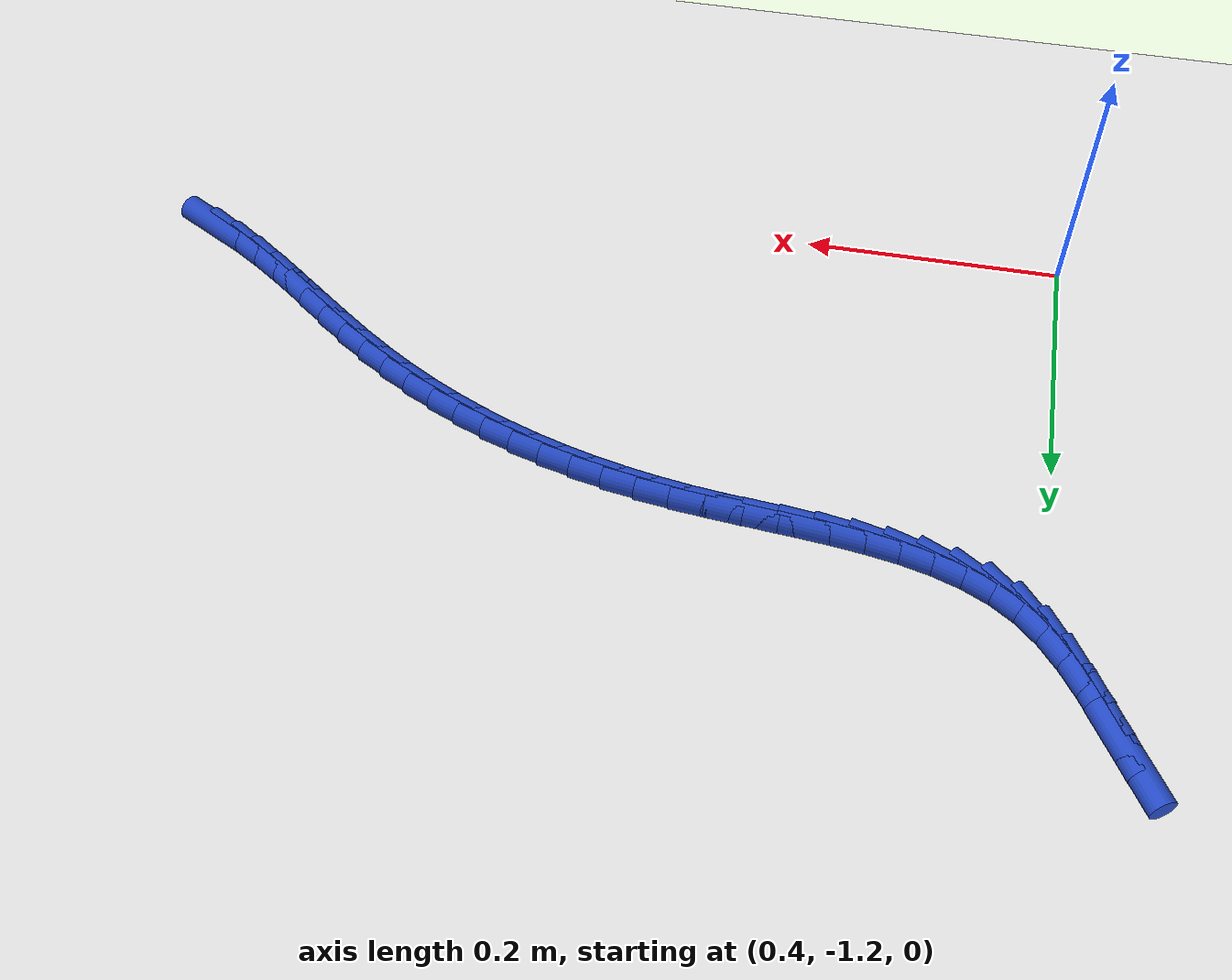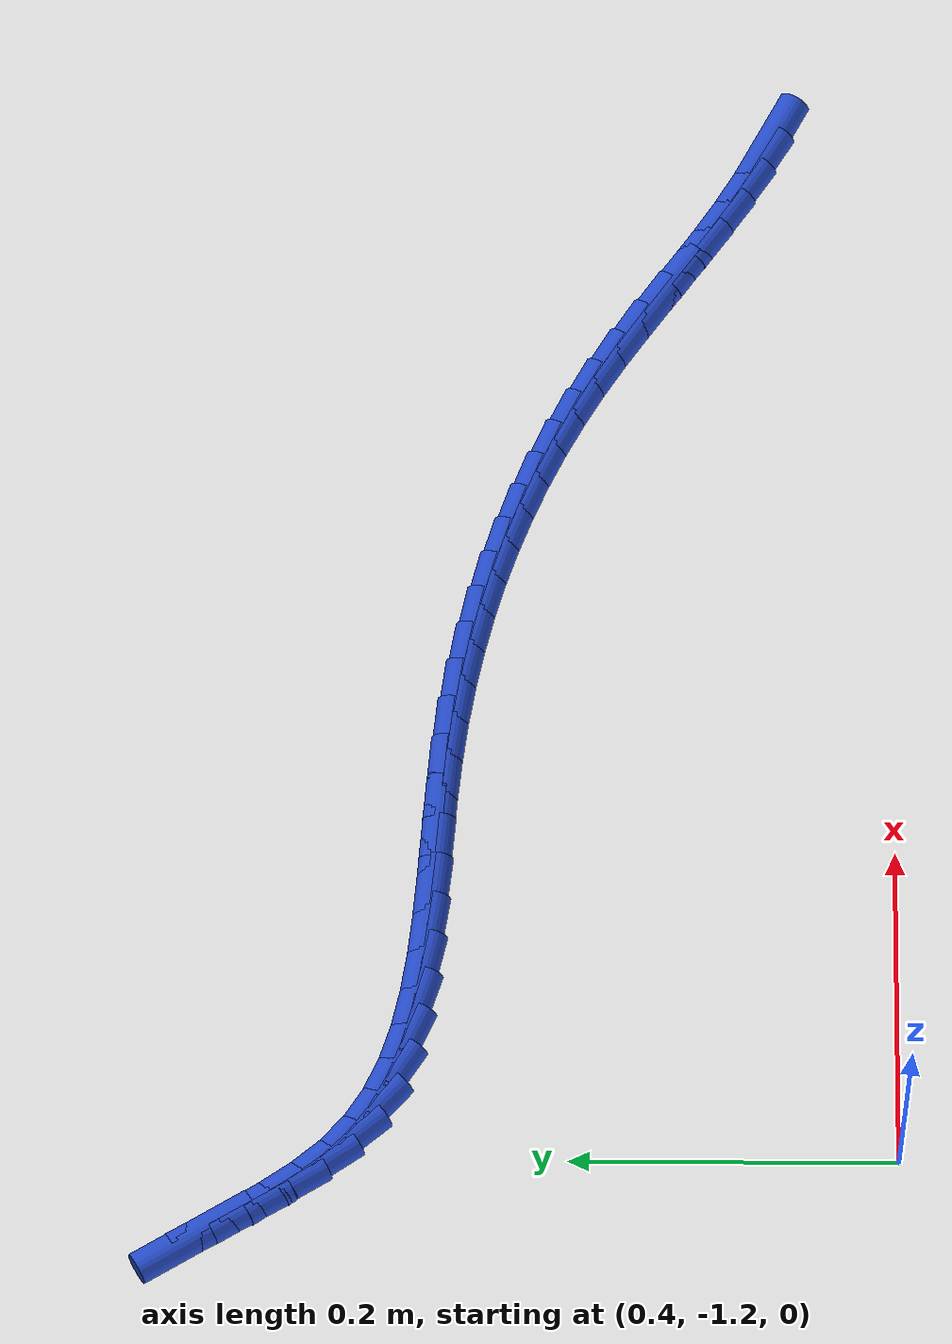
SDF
<sdf version="1.6">
 <world name="default">
  <model name="ground_plane">
   <static>1</static>
   <link name="link">
    <collision name="collision">
     <geometry><plane><normal>0 0 1</normal><size>100 100</size></plane></geometry>
     <surface><friction><ode><mu>100</mu><mu2>50</mu2></ode></friction></surface>
    </collision>
    <visual name="visual">
     <cast_shadows>0</cast_shadows>
     <geometry><plane><normal>0 0 1</normal><size>100 100</size></plane></geometry>
     <material>
      <script><uri>file://media/materials/scripts/gazebo.material</uri><name>Gazebo/WhiteGlow</name></script>
     </material>
    </visual>
   </link>
  </model>
  <model name="line">
   <link name="link_210">
    <pose>1.0692392543426281 -1.1220986752547326 0.01 0 1.57 -0.49415860476495577</pose>
    <collision name="collision">
     <geometry><cylinder><radius>0.01</radius><length>0.08</length></cylinder></geometry>
    </collision>
    <visual name="visual">
     <material>
      <script><name>Gazebo/Blue</name><uri>file://media/materials/scripts/gazebo.material</uri></script>
     </material>
     <geometry><cylinder><radius>0.01</radius><length>0.08</length></cylinder></geometry>
    </visual>
   </link>
   <link name="link_211">
    <pose>1.0484195898403872 -1.1108822518787465 0.01 0 1.57 -0.5541489551107136</pose>
    <collision name="collision">
     <geometry><cylinder><radius>0.01</radius><length>0.08</length></cylinder></geometry>
    </collision>
    <visual name="visual">
     <material>
      <script><name>Gazebo/Blue</name><uri>file://media/materials/scripts/gazebo.material</uri></script>
     </material>
     <geometry><cylinder><radius>0.01</radius><length>0.08</length></cylinder></geometry>
    </visual>
   </link>
   <link name="link_212">
    <pose>1.0279046003604007 -1.0981869949246754 0.01 0 1.57 -0.5968837927600502</pose>
    <collision name="collision">
     <geometry><cylinder><radius>0.01</radius><length>0.08</length></cylinder></geometry>
    </collision>
    <visual name="visual">
     <material>
      <script><name>Gazebo/Blue</name><uri>file://media/materials/scripts/gazebo.material</uri></script>
     </material>
     <geometry><cylinder><radius>0.01</radius><length>0.08</length></cylinder></geometry>
    </visual>
   </link>
   <link name="link_213">
    <pose>1.007603782115976 -1.084391131349122 0.01 0 1.57 -0.6237192578342458</pose>
    <collision name="collision">
     <geometry><cylinder><radius>0.01</radius><length>0.08</length></cylinder></geometry>
    </collision>
    <visual name="visual">
     <material>
      <script><name>Gazebo/Blue</name><uri>file://media/materials/scripts/gazebo.material</uri></script>
     </material>
     <geometry><cylinder><radius>0.01</radius><length>0.08</length></cylinder></geometry>
    </visual>
   </link>
   <link name="link_214">
    <pose>0.9874266313204213 -1.0698728881086876 0.01 0 1.57 -0.6356524924844298</pose>
    <collision name="collision">
     <geometry><cylinder><radius>0.01</radius><length>0.08</length></cylinder></geometry>
    </collision>
    <visual name="visual">
     <material>
      <script><name>Gazebo/Blue</name><uri>file://media/materials/scripts/gazebo.material</uri></script>
     </material>
     <geometry><cylinder><radius>0.01</radius><length>0.08</length></cylinder></geometry>
    </visual>
   </link>
   <link name="link_215">
    <pose>0.9672826441870447 -1.0550104921599754 0.01 0 1.57 -0.6331998358000652</pose>
    <collision name="collision">
     <geometry><cylinder><radius>0.01</radius><length>0.08</length></cylinder></geometry>
    </collision>
    <visual name="visual">
     <material>
      <script><name>Gazebo/Blue</name><uri>file://media/materials/scripts/gazebo.material</uri></script>
     </material>
     <geometry><cylinder><radius>0.01</radius><length>0.08</length></cylinder></geometry>
    </visual>
   </link>
   <link name="link_216">
    <pose>0.9470813169291535 -1.0401821704595868 0.01 0 1.57 -0.6163631748405805</pose>
    <collision name="collision">
     <geometry><cylinder><radius>0.01</radius><length>0.08</length></cylinder></geometry>
    </collision>
    <visual name="visual">
     <material>
      <script><name>Gazebo/Blue</name><uri>file://media/materials/scripts/gazebo.material</uri></script>
     </material>
     <geometry><cylinder><radius>0.01</radius><length>0.08</length></cylinder></geometry>
    </visual>
   </link>
   <link name="link_217">
    <pose>0.9267321457600551 -1.025766149964123 0.01 0 1.57 -0.5848445783812425</pose>
    <collision name="collision">
     <geometry><cylinder><radius>0.01</radius><length>0.08</length></cylinder></geometry>
    </collision>
    <visual name="visual">
     <material>
      <script><name>Gazebo/Blue</name><uri>file://media/materials/scripts/gazebo.material</uri></script>
     </material>
     <geometry><cylinder><radius>0.01</radius><length>0.08</length></cylinder></geometry>
    </visual>
   </link>
   <link name="link_218">
    <pose>0.9061455462487938 -1.0121354609734021 0.01 0 1.57 -0.5444170724606746</pose>
    <collision name="collision">
     <geometry><cylinder><radius>0.01</radius><length>0.08</length></cylinder></geometry>
    </collision>
    <visual name="visual">
     <material>
      <script><name>Gazebo/Blue</name><uri>file://media/materials/scripts/gazebo.material</uri></script>
     </material>
     <geometry><cylinder><radius>0.01</radius><length>0.08</length></cylinder></geometry>
    </visual>
   </link>
   <link name="link_219">
    <pose>0.885262265817363 -0.9994916830381732 0.01 0 1.57 -0.5028542162297456</pose>
    <collision name="collision">
     <geometry><cylinder><radius>0.01</radius><length>0.08</length></cylinder></geometry>
    </collision>
    <visual name="visual">
     <material>
      <script><name>Gazebo/Blue</name><uri>file://media/materials/scripts/gazebo.material</uri></script>
     </material>
     <geometry><cylinder><radius>0.01</radius><length>0.08</length></cylinder></geometry>
    </visual>
   </link>
   <link name="link_220">
    <pose>0.8640595830158334 -0.9878299035676349 0.01 0 1.57 -0.46088304631706806</pose>
    <collision name="collision">
     <geometry><cylinder><radius>0.01</radius><length>0.08</length></cylinder></geometry>
    </collision>
    <visual name="visual">
     <material>
      <script><name>Gazebo/Blue</name><uri>file://media/materials/scripts/gazebo.material</uri></script>
     </material>
     <geometry><cylinder><radius>0.01</radius><length>0.08</length></cylinder></geometry>
    </visual>
   </link>
   <link name="link_221">
    <pose>0.8425169490619654 -0.9771329289704342 0.01 0 1.57 -0.41878222858295233</pose>
    <collision name="collision">
     <geometry><cylinder><radius>0.01</radius><length>0.08</length></cylinder></geometry>
    </collision>
    <visual name="visual">
     <material>
      <script><name>Gazebo/Blue</name><uri>file://media/materials/scripts/gazebo.material</uri></script>
     </material>
     <geometry><cylinder><radius>0.01</radius><length>0.08</length></cylinder></geometry>
    </visual>
   </link>
   <link name="link_222">
    <pose>0.820613815173519 -0.9673835656552178 0.01 0 1.57 -0.3768364611860634</pose>
    <collision name="collision">
     <geometry><cylinder><radius>0.01</radius><length>0.08</length></cylinder></geometry>
    </collision>
    <visual name="visual">
     <material>
      <script><name>Gazebo/Blue</name><uri>file://media/materials/scripts/gazebo.material</uri></script>
     </material>
     <geometry><cylinder><radius>0.01</radius><length>0.08</length></cylinder></geometry>
    </visual>
   </link>
   <link name="link_223">
    <pose>0.7983296325682547 -0.9585646200306324 0.01 0 1.57 -0.33532716750412817</pose>
    <collision name="collision">
     <geometry><cylinder><radius>0.01</radius><length>0.08</length></cylinder></geometry>
    </collision>
    <visual name="visual">
     <material>
      <script><name>Gazebo/Blue</name><uri>file://media/materials/scripts/gazebo.material</uri></script>
     </material>
     <geometry><cylinder><radius>0.01</radius><length>0.08</length></cylinder></geometry>
    </visual>
   </link>
   <link name="link_224">
    <pose>0.7756438524639331 -0.9506588985053253 0.01 0 1.57 -0.2945234467070184</pose>
    <collision name="collision">
     <geometry><cylinder><radius>0.01</radius><length>0.08</length></cylinder></geometry>
    </collision>
    <visual name="visual">
     <material>
      <script><name>Gazebo/Blue</name><uri>file://media/materials/scripts/gazebo.material</uri></script>
     </material>
     <geometry><cylinder><radius>0.01</radius><length>0.08</length></cylinder></geometry>
    </visual>
   </link>
   <link name="link_225">
    <pose>0.7525359260783141 -0.9436492074879427 0.01 0 1.57 -0.25467398946796493</pose>
    <collision name="collision">
     <geometry><cylinder><radius>0.01</radius><length>0.08</length></cylinder></geometry>
    </collision>
    <visual name="visual">
     <material>
      <script><name>Gazebo/Blue</name><uri>file://media/materials/scripts/gazebo.material</uri></script>
     </material>
     <geometry><cylinder><radius>0.01</radius><length>0.08</length></cylinder></geometry>
    </visual>
   </link>
   <link name="link_226">
    <pose>0.7289853046291574 -0.9375183533871315 0.01 0 1.57 -0.21600052793311678</pose>
    <collision name="collision">
     <geometry><cylinder><radius>0.01</radius><length>0.08</length></cylinder></geometry>
    </collision>
    <visual name="visual">
     <material>
      <script><name>Gazebo/Blue</name><uri>file://media/materials/scripts/gazebo.material</uri></script>
     </material>
     <geometry><cylinder><radius>0.01</radius><length>0.08</length></cylinder></geometry>
    </visual>
   </link>
   <link name="link_227">
    <pose>0.7049714393342246 -0.932249142611539 0.01 0 1.57 -0.17869318116623695</pose>
    <collision name="collision">
     <geometry><cylinder><radius>0.01</radius><length>0.08</length></cylinder></geometry>
    </collision>
    <visual name="visual">
     <material>
      <script><name>Gazebo/Blue</name><uri>file://media/materials/scripts/gazebo.material</uri></script>
     </material>
     <geometry><cylinder><radius>0.01</radius><length>0.08</length></cylinder></geometry>
    </visual>
   </link>
   <link name="link_228">
    <pose>0.6804737814112756 -0.9278243815698117 0.01 0 1.57 -0.14290782322537326</pose>
    <collision name="collision">
     <geometry><cylinder><radius>0.01</radius><length>0.08</length></cylinder></geometry>
    </collision>
    <visual name="visual">
     <material>
      <script><name>Gazebo/Blue</name><uri>file://media/materials/scripts/gazebo.material</uri></script>
     </material>
     <geometry><cylinder><radius>0.01</radius><length>0.08</length></cylinder></geometry>
    </visual>
   </link>
   <link name="link_229">
    <pose>0.6554717820780704 -0.9242268766705963 0.01 0 1.57 -0.10978602818370707</pose>
    <collision name="collision">
     <geometry><cylinder><radius>0.01</radius><length>0.08</length></cylinder></geometry>
    </collision>
    <visual name="visual">
     <material>
      <script><name>Gazebo/Blue</name><uri>file://media/materials/scripts/gazebo.material</uri></script>
     </material>
     <geometry><cylinder><radius>0.01</radius><length>0.08</length></cylinder></geometry>
    </visual>
   </link>
   <link name="link_230">
    <pose>0.6299636434909109 -0.9214151337415473 0.01 0 1.57 -0.08859420734961435</pose>
    <collision name="collision">
     <geometry><cylinder><radius>0.01</radius><length>0.08</length></cylinder></geometry>
    </collision>
    <visual name="visual">
     <material>
      <script><name>Gazebo/Blue</name><uri>file://media/materials/scripts/gazebo.material</uri></script>
     </material>
     <geometry><cylinder><radius>0.01</radius><length>0.08</length></cylinder></geometry>
    </visual>
   </link>
   <link name="link_231">
    <pose>0.6041233686365182 -0.9191198266909358 0.01 0 1.57 -0.0836889071680255</pose>
    <collision name="collision">
     <geometry><cylinder><radius>0.01</radius><length>0.08</length></cylinder></geometry>
    </collision>
    <visual name="visual">
     <material>
      <script><name>Gazebo/Blue</name><uri>file://media/materials/scripts/gazebo.material</uri></script>
     </material>
     <geometry><cylinder><radius>0.01</radius><length>0.08</length></cylinder></geometry>
    </visual>
   </link>
   <link name="link_232">
    <pose>0.5782211121678981 -0.9169470201255323 0.01 0 1.57 -0.09489570069887167</pose>
    <collision name="collision">
     <geometry><cylinder><radius>0.01</radius><length>0.08</length></cylinder></geometry>
    </collision>
    <visual name="visual">
     <material>
      <script><name>Gazebo/Blue</name><uri>file://media/materials/scripts/gazebo.material</uri></script>
     </material>
     <geometry><cylinder><radius>0.01</radius><length>0.08</length></cylinder></geometry>
    </visual>
   </link>
   <link name="link_233">
    <pose>0.5525280078095842 -0.9145015098085836 0.01 0 1.57 -0.12286354902997579</pose>
    <collision name="collision">
     <geometry><cylinder><radius>0.01</radius><length>0.08</length></cylinder></geometry>
    </collision>
    <visual name="visual">
     <material>
      <script><name>Gazebo/Blue</name><uri>file://media/materials/scripts/gazebo.material</uri></script>
     </material>
     <geometry><cylinder><radius>0.01</radius><length>0.08</length></cylinder></geometry>
    </visual>
   </link>
   <link name="link_234">
    <pose>0.5273151892861094 -0.9113880915033356 0.01 0 1.57 -0.16910893706075023</pose>
    <collision name="collision">
     <geometry><cylinder><radius>0.01</radius><length>0.08</length></cylinder></geometry>
    </collision>
    <visual name="visual">
     <material>
      <script><name>Gazebo/Blue</name><uri>file://media/materials/scripts/gazebo.material</uri></script>
     </material>
     <geometry><cylinder><radius>0.01</radius><length>0.08</length></cylinder></geometry>
    </visual>
   </link>
   <link name="link_235">
    <pose>0.5028537903220084 -0.907211560973035 0.01 0 1.57 -0.2359291503032187</pose>
    <collision name="collision">
     <geometry><cylinder><radius>0.01</radius><length>0.08</length></cylinder></geometry>
    </collision>
    <visual name="visual">
     <material>
      <script><name>Gazebo/Blue</name><uri>file://media/materials/scripts/gazebo.material</uri></script>
     </material>
     <geometry><cylinder><radius>0.01</radius><length>0.08</length></cylinder></geometry>
    </visual>
   </link>
   <link name="link_236">
    <pose>0.4794149446418139 -0.9015767139809282 0.01 0 1.57 -0.32607855449126716</pose>
    <collision name="collision">
     <geometry><cylinder><radius>0.01</radius><length>0.08</length></cylinder></geometry>
    </collision>
    <visual name="visual">
     <material>
      <script><name>Gazebo/Blue</name><uri>file://media/materials/scripts/gazebo.material</uri></script>
     </material>
     <geometry><cylinder><radius>0.01</radius><length>0.08</length></cylinder></geometry>
    </visual>
   </link>
   <link name="link_237">
    <pose>0.4572697859700597 -0.8940883462902617 0.01 0 1.57 -0.44191819693690887</pose>
    <collision name="collision">
     <geometry><cylinder><radius>0.01</radius><length>0.08</length></cylinder></geometry>
    </collision>
    <visual name="visual">
     <material>
      <script><name>Gazebo/Blue</name><uri>file://media/materials/scripts/gazebo.material</uri></script>
     </material>
     <geometry><cylinder><radius>0.01</radius><length>0.08</length></cylinder></geometry>
    </visual>
   </link>
   <link name="link_238">
    <pose>0.43668944803127874 -0.8843512536642815 0.01 0 1.57 -0.5837344556250184</pose>
    <collision name="collision">
     <geometry><cylinder><radius>0.01</radius><length>0.08</length></cylinder></geometry>
    </collision>
    <visual name="visual">
     <material>
      <script><name>Gazebo/Blue</name><uri>file://media/materials/scripts/gazebo.material</uri></script>
     </material>
     <geometry><cylinder><radius>0.01</radius><length>0.08</length></cylinder></geometry>
    </visual>
   </link>
   <link name="link_239">
    <pose>0.41794506455000474 -0.871970231866234 0.01 0 1.57 -0.7443021566946789</pose>
    <collision name="collision">
     <geometry><cylinder><radius>0.01</radius><length>0.08</length></cylinder></geometry>
    </collision>
    <visual name="visual">
     <material>
      <script><name>Gazebo/Blue</name><uri>file://media/materials/scripts/gazebo.material</uri></script>
     </material>
     <geometry><cylinder><radius>0.01</radius><length>0.08</length></cylinder></geometry>
    </visual>
   </link>
   <link name="link_240">
    <pose>0.40126557951683395 -0.856608264374758 0.01 0 1.57 -0.8818341495545184</pose>
    <collision name="collision">
     <geometry><cylinder><radius>0.01</radius><length>0.08</length></cylinder></geometry>
    </collision>
    <visual name="visual">
     <material>
      <script><name>Gazebo/Blue</name><uri>file://media/materials/scripts/gazebo.material</uri></script>
     </material>
     <geometry><cylinder><radius>0.01</radius><length>0.08</length></cylinder></geometry>
    </visual>
   </link>
   <link name="link_241">
    <pose>0.3864122102973634 -0.8385734191759523 0.01 0 1.57 -0.9750305787994973</pose>
    <collision name="collision">
     <geometry><cylinder><radius>0.01</radius><length>0.08</length></cylinder></geometry>
    </collision>
    <visual name="visual">
     <material>
      <script><name>Gazebo/Blue</name><uri>file://media/materials/scripts/gazebo.material</uri></script>
     </material>
     <geometry><cylinder><radius>0.01</radius><length>0.08</length></cylinder></geometry>
    </visual>
   </link>
   <link name="link_242">
    <pose>0.372854868503545 -0.8185755306266257 0.01 0 1.57 -1.0286896684607643</pose>
    <collision name="collision">
     <geometry><cylinder><radius>0.01</radius><length>0.08</length></cylinder></geometry>
    </collision>
    <visual name="visual">
     <material>
      <script><name>Gazebo/Blue</name><uri>file://media/materials/scripts/gazebo.material</uri></script>
     </material>
     <geometry><cylinder><radius>0.01</radius><length>0.08</length></cylinder></geometry>
    </visual>
   </link>
   <link name="link_243">
    <pose>0.36005905940555344 -0.7973305102719753 0.01 0 1.57 -1.047326620586011</pose>
    <collision name="collision">
     <geometry><cylinder><radius>0.01</radius><length>0.08</length></cylinder></geometry>
    </collision>
    <visual name="visual">
     <material>
      <script><name>Gazebo/Blue</name><uri>file://media/materials/scripts/gazebo.material</uri></script>
     </material>
     <geometry><cylinder><radius>0.01</radius><length>0.08</length></cylinder></geometry>
    </visual>
   </link>
   <link name="link_244">
    <pose>0.34749028827356454 -0.7755542696572014 0.01 0 1.57 -1.033301987767581</pose>
    <collision name="collision">
     <geometry><cylinder><radius>0.01</radius><length>0.08</length></cylinder></geometry>
    </collision>
    <visual name="visual">
     <material>
      <script><name>Gazebo/Blue</name><uri>file://media/materials/scripts/gazebo.material</uri></script>
     </material>
     <geometry><cylinder><radius>0.01</radius><length>0.08</length></cylinder></geometry>
    </visual>
   </link>
  </model>
 </world>
</sdf>
